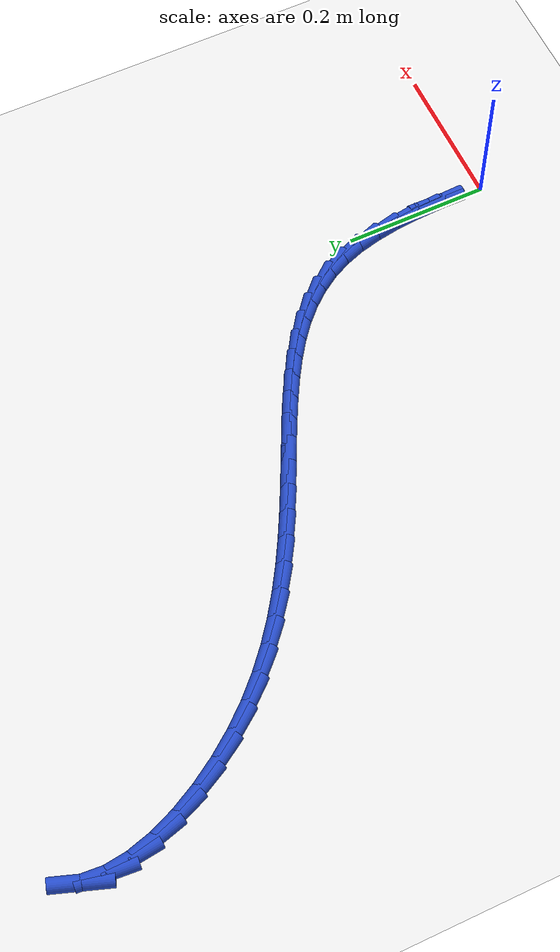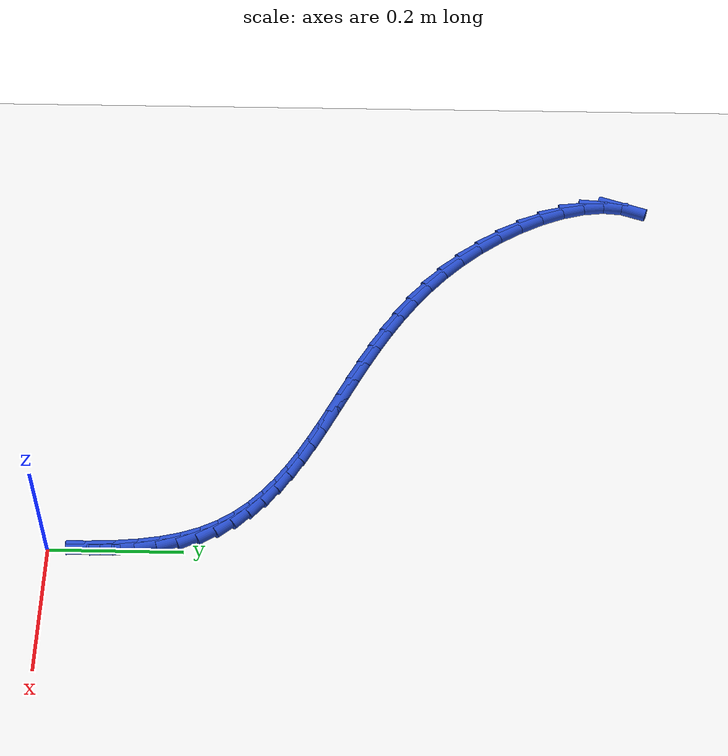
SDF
<sdf version="1.6">
 <world name="default">
  <model name="ground_plane">
   <static>1</static>
   <link name="link">
    <collision name="collision">
     <geometry><plane><normal>0 0 1</normal><size>100 100</size></plane></geometry>
     <surface><friction><ode><mu>100</mu><mu2>50</mu2></ode></friction></surface>
    </collision>
    <visual name="visual">
     <cast_shadows>0</cast_shadows>
     <geometry><plane><normal>0 0 1</normal><size>100 100</size></plane></geometry>
     <material>
      <script><uri>file://media/materials/scripts/gazebo.material</uri><name>Gazebo/WhiteGlow</name></script>
     </material>
    </visual>
   </link>
  </model>
  <model name="line">
   <link name="link_2">
    <pose>0.00043832751002415384 0.06873777445891724 0.01 0 1.57 -1.5269748179078124</pose>
    <collision name="collision">
     <geometry><cylinder><radius>0.01</radius><length>0.08</length></cylinder></geometry>
    </collision>
    <visual name="visual">
     <material>
      <script><name>Gazebo/Blue</name><uri>file://media/materials/scripts/gazebo.material</uri></script>
     </material>
     <geometry><cylinder><radius>0.01</radius><length>0.08</length></cylinder></geometry>
    </visual>
   </link>
   <link name="link_3">
    <pose>-0.0010501066504835894 0.10268186532563708 0.01 0 1.57 -1.477915862114082</pose>
    <collision name="collision">
     <geometry><cylinder><radius>0.01</radius><length>0.08</length></cylinder></geometry>
    </collision>
    <visual name="visual">
     <material>
      <script><name>Gazebo/Blue</name><uri>file://media/materials/scripts/gazebo.material</uri></script>
     </material>
     <geometry><cylinder><radius>0.01</radius><length>0.08</length></cylinder></geometry>
    </visual>
   </link>
   <link name="link_4">
    <pose>-0.004132262052836136 0.13577049472864247 0.01 0 1.57 -1.4143267002373296</pose>
    <collision name="collision">
     <geometry><cylinder><radius>0.01</radius><length>0.08</length></cylinder></geometry>
    </collision>
    <visual name="visual">
     <material>
      <script><name>Gazebo/Blue</name><uri>file://media/materials/scripts/gazebo.material</uri></script>
     </material>
     <geometry><cylinder><radius>0.01</radius><length>0.08</length></cylinder></geometry>
    </visual>
   </link>
   <link name="link_5">
    <pose>-0.009149630670657185 0.1675744647515172 0.01 0 1.57 -1.3329760616321287</pose>
    <collision name="collision">
     <geometry><cylinder><radius>0.01</radius><length>0.08</length></cylinder></geometry>
    </collision>
    <visual name="visual">
     <material>
      <script><name>Gazebo/Blue</name><uri>file://media/materials/scripts/gazebo.material</uri></script>
     </material>
     <geometry><cylinder><radius>0.01</radius><length>0.08</length></cylinder></geometry>
    </visual>
   </link>
   <link name="link_6">
    <pose>-0.01644370447757043 0.19766457747784472 0.01 0 1.57 -1.2299644972680142</pose>
    <collision name="collision">
     <geometry><cylinder><radius>0.01</radius><length>0.08</length></cylinder></geometry>
    </collision>
    <visual name="visual">
     <material>
      <script><name>Gazebo/Blue</name><uri>file://media/materials/scripts/gazebo.material</uri></script>
     </material>
     <geometry><cylinder><radius>0.01</radius><length>0.08</length></cylinder></geometry>
    </visual>
   </link>
   <link name="link_7">
    <pose>-0.026355835067479575 0.22561180953779056 0.01 0 1.57 -1.1078628706561144</pose>
    <collision name="collision">
     <geometry><cylinder><radius>0.01</radius><length>0.08</length></cylinder></geometry>
    </collision>
    <visual name="visual">
     <material>
      <script><name>Gazebo/Blue</name><uri>file://media/materials/scripts/gazebo.material</uri></script>
     </material>
     <geometry><cylinder><radius>0.01</radius><length>0.08</length></cylinder></geometry>
    </visual>
   </link>
   <link name="link_8">
    <pose>-0.03909993905340194 0.2511455887987932 0.01 0 1.57 -0.9859523500956935</pose>
    <collision name="collision">
     <geometry><cylinder><radius>0.01</radius><length>0.08</length></cylinder></geometry>
    </collision>
    <visual name="visual">
     <material>
      <script><name>Gazebo/Blue</name><uri>file://media/materials/scripts/gazebo.material</uri></script>
     </material>
     <geometry><cylinder><radius>0.01</radius><length>0.08</length></cylinder></geometry>
    </visual>
   </link>
   <link name="link_9">
    <pose>-0.054527475111931935 0.27444601929339246 0.01 0 1.57 -0.8725785521571431</pose>
    <collision name="collision">
     <geometry><cylinder><radius>0.01</radius><length>0.08</length></cylinder></geometry>
    </collision>
    <visual name="visual">
     <material>
      <script><name>Gazebo/Blue</name><uri>file://media/materials/scripts/gazebo.material</uri></script>
     </material>
     <geometry><cylinder><radius>0.01</radius><length>0.08</length></cylinder></geometry>
    </visual>
   </link>
   <link name="link_10">
    <pose>-0.07242589225260787 0.2957727939619144 0.01 0 1.57 -0.7717218353284312</pose>
    <collision name="collision">
     <geometry><cylinder><radius>0.01</radius><length>0.08</length></cylinder></geometry>
    </collision>
    <visual name="visual">
     <material>
      <script><name>Gazebo/Blue</name><uri>file://media/materials/scripts/gazebo.material</uri></script>
     </material>
     <geometry><cylinder><radius>0.01</radius><length>0.08</length></cylinder></geometry>
    </visual>
   </link>
   <link name="link_11">
    <pose>-0.09258263948496796 0.31538560574468494 0.01 0 1.57 -0.6855362669745999</pose>
    <collision name="collision">
     <geometry><cylinder><radius>0.01</radius><length>0.08</length></cylinder></geometry>
    </collision>
    <visual name="visual">
     <material>
      <script><name>Gazebo/Blue</name><uri>file://media/materials/scripts/gazebo.material</uri></script>
     </material>
     <geometry><cylinder><radius>0.01</radius><length>0.08</length></cylinder></geometry>
    </visual>
   </link>
   <link name="link_12">
    <pose>-0.1147851658185505 0.3335441475820299 0.01 0 1.57 -0.6145949139323338</pose>
    <collision name="collision">
     <geometry><cylinder><radius>0.01</radius><length>0.08</length></cylinder></geometry>
    </collision>
    <visual name="visual">
     <material>
      <script><name>Gazebo/Blue</name><uri>file://media/materials/scripts/gazebo.material</uri></script>
     </material>
     <geometry><cylinder><radius>0.01</radius><length>0.08</length></cylinder></geometry>
    </visual>
   </link>
   <link name="link_13">
    <pose>-0.13882092026289375 0.3505081124142754 0.01 0 1.57 -0.5584258317124778</pose>
    <collision name="collision">
     <geometry><cylinder><radius>0.01</radius><length>0.08</length></cylinder></geometry>
    </collision>
    <visual name="visual">
     <material>
      <script><name>Gazebo/Blue</name><uri>file://media/materials/scripts/gazebo.material</uri></script>
     </material>
     <geometry><cylinder><radius>0.01</radius><length>0.08</length></cylinder></geometry>
    </visual>
   </link>
   <link name="link_14">
    <pose>-0.16447735182753587 0.36653719318174705 0.01 0 1.57 -0.5160329135707314</pose>
    <collision name="collision">
     <geometry><cylinder><radius>0.01</radius><length>0.08</length></cylinder></geometry>
    </collision>
    <visual name="visual">
     <material>
      <script><name>Gazebo/Blue</name><uri>file://media/materials/scripts/gazebo.material</uri></script>
     </material>
     <geometry><cylinder><radius>0.01</radius><length>0.08</length></cylinder></geometry>
    </visual>
   </link>
   <link name="link_15">
    <pose>-0.19154190952201533 0.3818910828247711 0.01 0 1.57 -0.48626732253995403</pose>
    <collision name="collision">
     <geometry><cylinder><radius>0.01</radius><length>0.08</length></cylinder></geometry>
    </collision>
    <visual name="visual">
     <material>
      <script><name>Gazebo/Blue</name><uri>file://media/materials/scripts/gazebo.material</uri></script>
     </material>
     <geometry><cylinder><radius>0.01</radius><length>0.08</length></cylinder></geometry>
    </visual>
   </link>
   <link name="link_16">
    <pose>-0.21980204235587023 0.3968294742836733 0.01 0 1.57 -0.46804256202097166</pose>
    <collision name="collision">
     <geometry><cylinder><radius>0.01</radius><length>0.08</length></cylinder></geometry>
    </collision>
    <visual name="visual">
     <material>
      <script><name>Gazebo/Blue</name><uri>file://media/materials/scripts/gazebo.material</uri></script>
     </material>
     <geometry><cylinder><radius>0.01</radius><length>0.08</length></cylinder></geometry>
    </visual>
   </link>
   <link name="link_17">
    <pose>-0.2490451993386389 0.4116120604987798 0.01 0 1.57 -0.46043482709330746</pose>
    <collision name="collision">
     <geometry><cylinder><radius>0.01</radius><length>0.08</length></cylinder></geometry>
    </collision>
    <visual name="visual">
     <material>
      <script><name>Gazebo/Blue</name><uri>file://media/materials/scripts/gazebo.material</uri></script>
     </material>
     <geometry><cylinder><radius>0.01</radius><length>0.08</length></cylinder></geometry>
    </visual>
   </link>
   <link name="link_18">
    <pose>-0.2790588294798596 0.4264985344104164 0.01 0 1.57 -0.462712404956665</pose>
    <collision name="collision">
     <geometry><cylinder><radius>0.01</radius><length>0.08</length></cylinder></geometry>
    </collision>
    <visual name="visual">
     <material>
      <script><name>Gazebo/Blue</name><uri>file://media/materials/scripts/gazebo.material</uri></script>
     </material>
     <geometry><cylinder><radius>0.01</radius><length>0.08</length></cylinder></geometry>
    </visual>
   </link>
   <link name="link_19">
    <pose>-0.30963038178907065 0.441748588958909 0.01 0 1.57 -0.47432488857347443</pose>
    <collision name="collision">
     <geometry><cylinder><radius>0.01</radius><length>0.08</length></cylinder></geometry>
    </collision>
    <visual name="visual">
     <material>
      <script><name>Gazebo/Blue</name><uri>file://media/materials/scripts/gazebo.material</uri></script>
     </material>
     <geometry><cylinder><radius>0.01</radius><length>0.08</length></cylinder></geometry>
    </visual>
   </link>
   <link name="link_20">
    <pose>-0.3405473052758102 0.4576219170845836 0.01 0 1.57 -0.49486973653933797</pose>
    <collision name="collision">
     <geometry><cylinder><radius>0.01</radius><length>0.08</length></cylinder></geometry>
    </collision>
    <visual name="visual">
     <material>
      <script><name>Gazebo/Blue</name><uri>file://media/materials/scripts/gazebo.material</uri></script>
     </material>
     <geometry><cylinder><radius>0.01</radius><length>0.08</length></cylinder></geometry>
    </visual>
   </link>
   <link name="link_21">
    <pose>-0.37159704894961654 0.47437821172776606 0.01 0 1.57 -0.5240444670976809</pose>
    <collision name="collision">
     <geometry><cylinder><radius>0.01</radius><length>0.08</length></cylinder></geometry>
    </collision>
    <visual name="visual">
     <material>
      <script><name>Gazebo/Blue</name><uri>file://media/materials/scripts/gazebo.material</uri></script>
     </material>
     <geometry><cylinder><radius>0.01</radius><length>0.08</length></cylinder></geometry>
    </visual>
   </link>
   <link name="link_22">
    <pose>-0.402567061820028 0.49227716582878234 0.01 0 1.57 -0.5615876416291465</pose>
    <collision name="collision">
     <geometry><cylinder><radius>0.01</radius><length>0.08</length></cylinder></geometry>
    </collision>
    <visual name="visual">
     <material>
      <script><name>Gazebo/Blue</name><uri>file://media/materials/scripts/gazebo.material</uri></script>
     </material>
     <geometry><cylinder><radius>0.01</radius><length>0.08</length></cylinder></geometry>
    </visual>
   </link>
   <link name="link_23">
    <pose>-0.4332447928965827 0.5115784723279584 0.01 0 1.57 -0.6072101114378999</pose>
    <collision name="collision">
     <geometry><cylinder><radius>0.01</radius><length>0.08</length></cylinder></geometry>
    </collision>
    <visual name="visual">
     <material>
      <script><name>Gazebo/Blue</name><uri>file://media/materials/scripts/gazebo.material</uri></script>
     </material>
     <geometry><cylinder><radius>0.01</radius><length>0.08</length></cylinder></geometry>
    </visual>
   </link>
   <link name="link_24">
    <pose>-0.46341769118881904 0.5325418241656202 0.01 0 1.57 -0.6605193197187166</pose>
    <collision name="collision">
     <geometry><cylinder><radius>0.01</radius><length>0.08</length></cylinder></geometry>
    </collision>
    <visual name="visual">
     <material>
      <script><name>Gazebo/Blue</name><uri>file://media/materials/scripts/gazebo.material</uri></script>
     </material>
     <geometry><cylinder><radius>0.01</radius><length>0.08</length></cylinder></geometry>
    </visual>
   </link>
   <link name="link_25">
    <pose>-0.4928732057062754 0.5554269142820938 0.01 0 1.57 -0.7209433856596174</pose>
    <collision name="collision">
     <geometry><cylinder><radius>0.01</radius><length>0.08</length></cylinder></geometry>
    </collision>
    <visual name="visual">
     <material>
      <script><name>Gazebo/Blue</name><uri>file://media/materials/scripts/gazebo.material</uri></script>
     </material>
     <geometry><cylinder><radius>0.01</radius><length>0.08</length></cylinder></geometry>
    </visual>
   </link>
   <link name="link_26">
    <pose>-0.5213987854584898 0.580493435617705 0.01 0 1.57 -0.7876672398565674</pose>
    <collision name="collision">
     <geometry><cylinder><radius>0.01</radius><length>0.08</length></cylinder></geometry>
    </collision>
    <visual name="visual">
     <material>
      <script><name>Gazebo/Blue</name><uri>file://media/materials/scripts/gazebo.material</uri></script>
     </material>
     <geometry><cylinder><radius>0.01</radius><length>0.08</length></cylinder></geometry>
    </visual>
   </link>
   <link name="link_27">
    <pose>-0.5487818794550003 0.6080010811127793 0.01 0 1.57 -0.8595334222569369</pose>
    <collision name="collision">
     <geometry><cylinder><radius>0.01</radius><length>0.08</length></cylinder></geometry>
    </collision>
    <visual name="visual">
     <material>
      <script><name>Gazebo/Blue</name><uri>file://media/materials/scripts/gazebo.material</uri></script>
     </material>
     <geometry><cylinder><radius>0.01</radius><length>0.08</length></cylinder></geometry>
    </visual>
   </link>
   <link name="link_28">
    <pose>-0.5748051520950431 0.6382000574813455 0.01 0 1.57 -0.9332393618627947</pose>
    <collision name="collision">
     <geometry><cylinder><radius>0.01</radius><length>0.08</length></cylinder></geometry>
    </collision>
    <visual name="visual">
     <material>
      <script><name>Gazebo/Blue</name><uri>file://media/materials/scripts/gazebo.material</uri></script>
     </material>
     <geometry><cylinder><radius>0.01</radius><length>0.08</length></cylinder></geometry>
    </visual>
   </link>
   <link name="link_29">
    <pose>-0.5990318488802844 0.670905539703456 0.01 0 1.57 -1.0085580655554982</pose>
    <collision name="collision">
     <geometry><cylinder><radius>0.01</radius><length>0.08</length></cylinder></geometry>
    </collision>
    <visual name="visual">
     <material>
      <script><name>Gazebo/Blue</name><uri>file://media/materials/scripts/gazebo.material</uri></script>
     </material>
     <geometry><cylinder><radius>0.01</radius><length>0.08</length></cylinder></geometry>
    </visual>
   </link>
   <link name="link_30">
    <pose>-0.6207191855864936 0.7053259517282369 0.01 0 1.57 -1.0906720595886172</pose>
    <collision name="collision">
     <geometry><cylinder><radius>0.01</radius><length>0.08</length></cylinder></geometry>
    </collision>
    <visual name="visual">
     <material>
      <script><name>Gazebo/Blue</name><uri>file://media/materials/scripts/gazebo.material</uri></script>
     </material>
     <geometry><cylinder><radius>0.01</radius><length>0.08</length></cylinder></geometry>
    </visual>
   </link>
   <link name="link_31">
    <pose>-0.6391016679178374 0.7406246912926802 0.01 0 1.57 -1.186005393886624</pose>
    <collision name="collision">
     <geometry><cylinder><radius>0.01</radius><length>0.08</length></cylinder></geometry>
    </collision>
    <visual name="visual">
     <material>
      <script><name>Gazebo/Blue</name><uri>file://media/materials/scripts/gazebo.material</uri></script>
     </material>
     <geometry><cylinder><radius>0.01</radius><length>0.08</length></cylinder></geometry>
    </visual>
   </link>
   <link name="link_32">
    <pose>-0.6534138015784827 0.7759651561337785 0.01 0 1.57 -1.3030692803742807</pose>
    <collision name="collision">
     <geometry><cylinder><radius>0.01</radius><length>0.08</length></cylinder></geometry>
    </collision>
    <visual name="visual">
     <material>
      <script><name>Gazebo/Blue</name><uri>file://media/materials/scripts/gazebo.material</uri></script>
     </material>
     <geometry><cylinder><radius>0.01</radius><length>0.08</length></cylinder></geometry>
    </visual>
   </link>
   <link name="link_33">
    <pose>-0.6628900922725963 0.8105107439885243 0.01 0 1.57 -1.4536065105559255</pose>
    <collision name="collision">
     <geometry><cylinder><radius>0.01</radius><length>0.08</length></cylinder></geometry>
    </collision>
    <visual name="visual">
     <material>
      <script><name>Gazebo/Blue</name><uri>file://media/materials/scripts/gazebo.material</uri></script>
     </material>
     <geometry><cylinder><radius>0.01</radius><length>0.08</length></cylinder></geometry>
    </visual>
   </link>
   <link name="link_34">
    <pose>-0.6667650457043451 0.8434248525939102 0.01 0 1.57 1.4891325931933959</pose>
    <collision name="collision">
     <geometry><cylinder><radius>0.01</radius><length>0.08</length></cylinder></geometry>
    </collision>
    <visual name="visual">
     <material>
      <script><name>Gazebo/Blue</name><uri>file://media/materials/scripts/gazebo.material</uri></script>
     </material>
     <geometry><cylinder><radius>0.01</radius><length>0.08</length></cylinder></geometry>
    </visual>
   </link>
   <link name="link_35">
    <pose>-0.6642731675778962 0.8738708796869287 0.01 0 1.57 1.2300332123612554</pose>
    <collision name="collision">
     <geometry><cylinder><radius>0.01</radius><length>0.08</length></cylinder></geometry>
    </collision>
    <visual name="visual">
     <material>
      <script><name>Gazebo/Blue</name><uri>file://media/materials/scripts/gazebo.material</uri></script>
     </material>
     <geometry><cylinder><radius>0.01</radius><length>0.08</length></cylinder></geometry>
    </visual>
   </link>
   <link name="link_282">
    <pose>0.0010060203539907205 0.06923988778467238 0.01 0 1.57 1.5562678576885736</pose>
    <collision name="collision">
     <geometry><cylinder><radius>0.01</radius><length>0.08</length></cylinder></geometry>
    </collision>
    <visual name="visual">
     <material>
      <script><name>Gazebo/Blue</name><uri>file://media/materials/scripts/gazebo.material</uri></script>
     </material>
     <geometry><cylinder><radius>0.01</radius><length>0.08</length></cylinder></geometry>
    </visual>
   </link>
  </model>
 </world>
</sdf>
